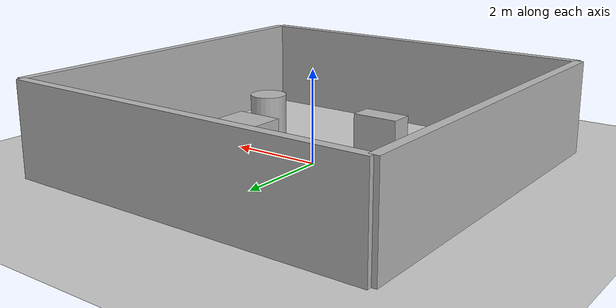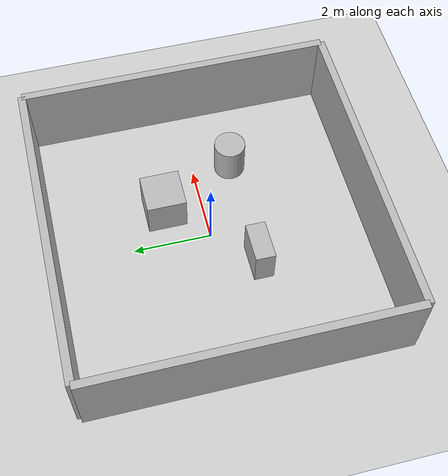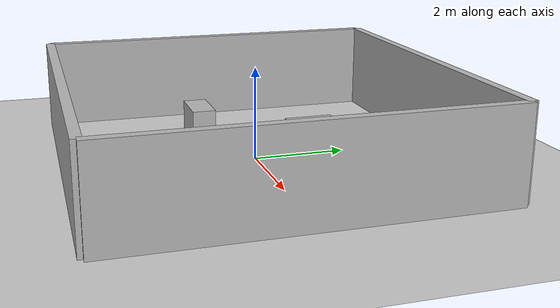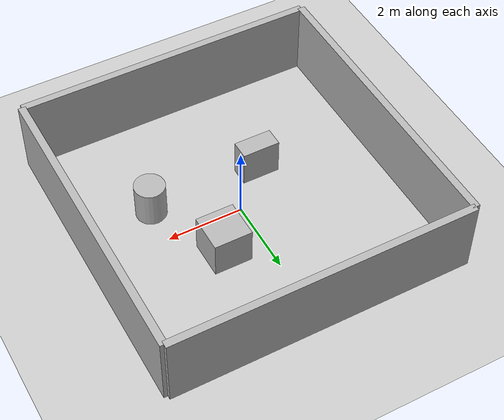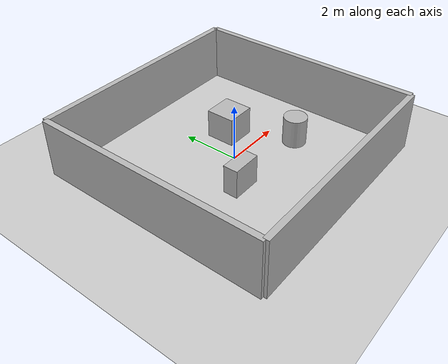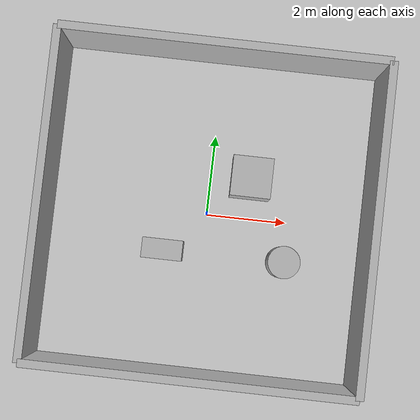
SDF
<?xml version="1.0" ?>
<sdf version="1.6">
  <world name="room_world">

    <!-- Physics -->
    <physics type="ode">
      <real_time_update_rate>1000</real_time_update_rate>
    </physics>

    <!-- Sun -->
    <include>
      <uri>model://sun</uri>
    </include>

    <!-- Ground -->
    <include>
      <uri>model://ground_plane</uri>
    </include>

    <!-- ROOM WALLS -->

    <!-- Front Wall -->
    <model name="wall_front">
      <static>true</static>
      <link name="link">
        <collision name="collision">
          <geometry>
            <box><size>8 0.2 2</size></box>
          </geometry>
        </collision>
        <visual name="visual">
          <geometry>
            <box><size>8 0.2 2</size></box>
          </geometry>
        </visual>
      </link>
      <pose>0 4 1 0 0 0</pose>
    </model>

    <!-- Back Wall -->
    <model name="wall_back">
      <static>true</static>
      <link name="link">
        <collision name="collision">
          <geometry>
            <box><size>8 0.2 2</size></box>
          </geometry>
        </collision>
        <visual name="visual">
          <geometry>
            <box><size>8 0.2 2</size></box>
          </geometry>
        </visual>
      </link>
      <pose>0 -4 1 0 0 0</pose>
    </model>

    <!-- Left Wall -->
    <model name="wall_left">
      <static>true</static>
      <link name="link">
        <collision name="collision">
          <geometry>
            <box><size>0.2 8 2</size></box>
          </geometry>
        </collision>
        <visual name="visual">
          <geometry>
            <box><size>0.2 8 2</size></box>
          </geometry>
        </visual>
      </link>
      <pose>-4 0 1 0 0 0</pose>
    </model>

    <!-- Right Wall -->
    <model name="wall_right">
      <static>true</static>
      <link name="link">
        <collision name="collision">
          <geometry>
            <box><size>0.2 8 2</size></box>
          </geometry>
        </collision>
        <visual name="visual">
          <geometry>
            <box><size>0.2 8 2</size></box>
          </geometry>
        </visual>
      </link>
      <pose>4 0 1 0 0 0</pose>
    </model>

    <!-- INTERNAL OBSTACLES -->

    <!-- Box 1 -->
    <model name="obstacle_1">
      <static>true</static>
      <link name="link">
        <collision name="collision">
          <geometry>
            <box><size>1 1 1</size></box>
          </geometry>
        </collision>
        <visual name="visual">
          <geometry>
            <box><size>1 1 1</size></box>
          </geometry>
        </visual>
      </link>
      <pose>1 1 0.5 0 0 0</pose>
    </model>

    <!-- Box 2 -->
    <model name="obstacle_2">
      <static>true</static>
      <link name="link">
        <collision name="collision">
          <geometry>
            <box><size>1 0.5 1</size></box>
          </geometry>
        </collision>
        <visual name="visual">
          <geometry>
            <box><size>1 0.5 1</size></box>
          </geometry>
        </visual>
      </link>
      <pose>-1 -1 0.5 0 0 0</pose>
    </model>

    <!-- Cylinder obstacle -->
    <model name="cylinder_obstacle">
      <static>true</static>
      <link name="link">
        <collision name="collision">
          <geometry>
            <cylinder>
              <radius>0.4</radius>
              <length>1</length>
            </cylinder>
          </geometry>
        </collision>
        <visual name="visual">
          <geometry>
            <cylinder>
              <radius>0.4</radius>
              <length>1</length>
            </cylinder>
          </geometry>
        </visual>
      </link>
      <pose>2 -1 0.5 0 0 0</pose>
    </model>

  </world>
</sdf>
